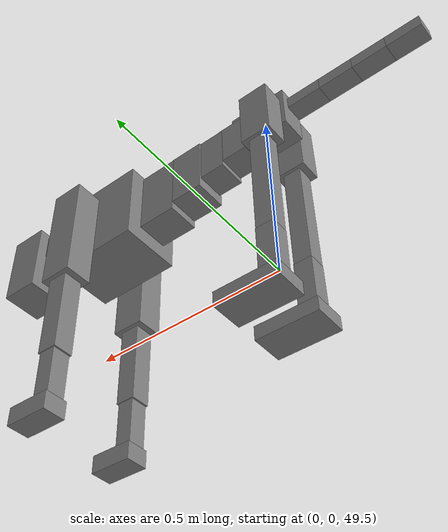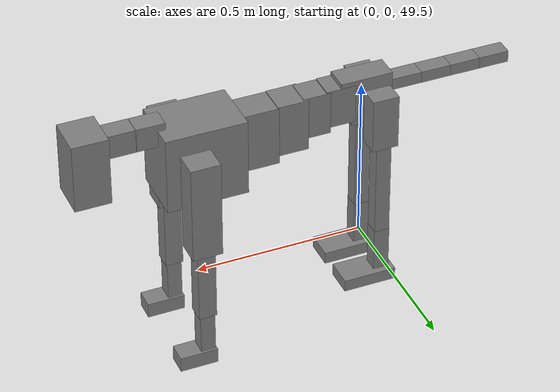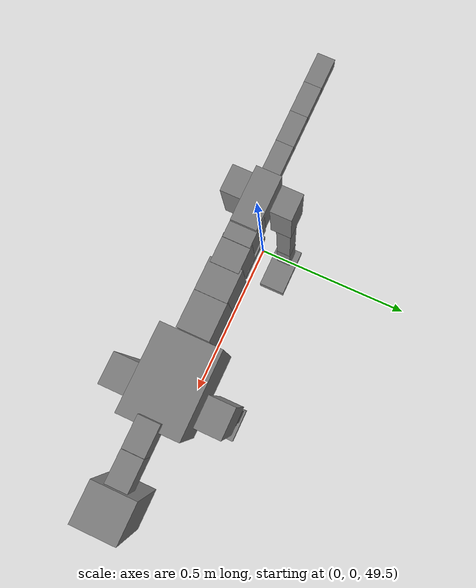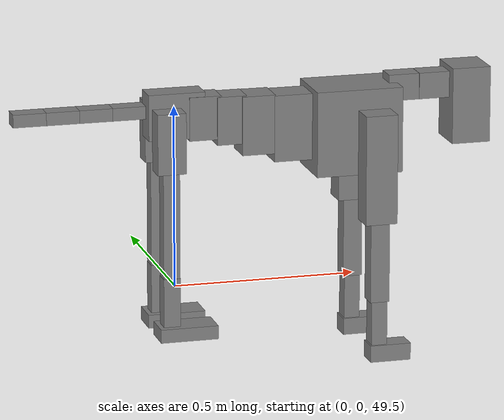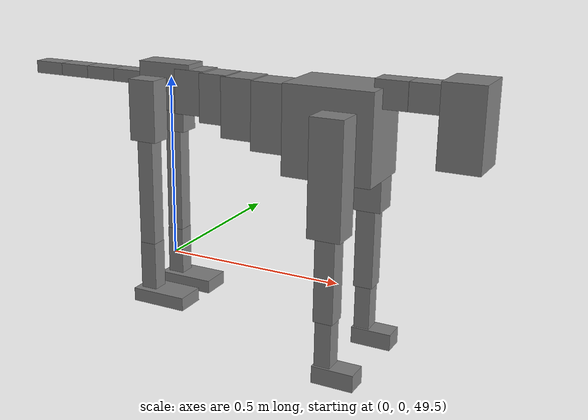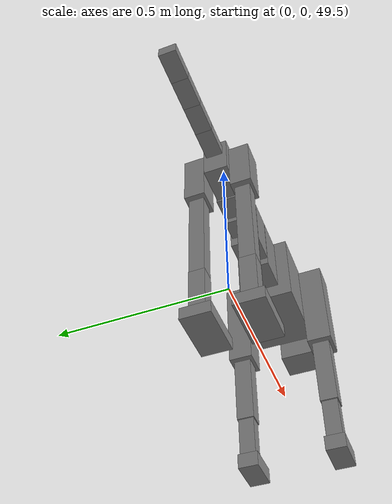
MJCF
<mujoco model="dog">

    <default>
        <joint armature="0.02" stiffness="1" damping="0.2" limited="true"/>
        <geom condim="3" friction="1 0.05 0.05" margin="0.01"/>
        <motor ctrllimited="true" ctrlrange="-1.0 1.0" forcelimited="true" gear="50"/>
    </default>

    <compiler inertiafromgeom="true" angle="radian"/>

    <option timestep="0.016" iterations="50" tolerance="1e-10" solver="Newton" jacobian="dense" cone="pyramidal"/>

    <size nconmax="20000" njmax="60000" nstack="5000000"/>
    <visual>
        <map force="0.1" zfar="30"/>
        <rgba haze="0.15 0.25 0.35 1"/>
        <quality shadowsize="2048"/>
        <global offwidth="800" offheight="800"/>
    </visual>

    <asset>
        <texture type="skybox" builtin="gradient" rgb1="0.3 0.5 0.7" rgb2="0 0 0" width="512" height="512"/>
        <texture name="texplane" type="2d" builtin="checker" rgb1=".2 .3 .4" rgb2=".1 0.15 0.2" width="512" height="512"
                 mark="cross" markrgb=".8 .8 .8"/>
        <texture name="texgeom" type="cube" builtin="flat" mark="cross" width="127" height="1278" rgb1="0.8 0.6 0.4"
                 rgb2="0.8 0.6 0.4" markrgb="1 1 1" random="0.01"/>

        <material name="matplane" reflectance="0.3" texture="texplane" texrepeat="1 1" texuniform="true"/>
        <material name="matgeom" texture="texgeom" texuniform="true" rgba="0.8 0.6 .4 1"/>
    </asset>

    <worldbody>
        <geom name="floor" pos="0 0 0" size="0 0 .25" type="plane" material="matplane" condim="3"/>

        <light directional="false" diffuse=".2 .2 .2" specular="0 0 0" pos="0 0 5" dir="0 0 -1" castshadow="false"/>
        <light mode="targetbodycom" target="torso" directional="false" diffuse=".8 .8 .8" specular="0.3 0.3 0.3"
               pos="0 0 4.0" dir="0 0 -1"/>

        <body name="root" pos="0 0 50">
            <freejoint name="root_1"/>
            <geom type="box" pos="0 0 -0.02" size="0.0774  0.0358  0.063" density="2030"/>

            <body name="spine1" pos="0.054 0 0">
                <joint name="spine1_y" axis="0 1 0" range="0 0.7" limited="true"/>
                <geom type="box" pos="0.02375 0 -0.03" size="0.04375  0.0375  0.05985" density="2030"/>

                <body name="spine2" pos="0.0612 0 0">
                    <joint name="spine2_y" axis="0 1 0" range="-0.15 0.15" limited="true"/>
                    <geom type="box" pos="0.03555  0  -0.04" size="0.04055  0.039  0.06615" density="2030"/>

                    <body name="spine3" pos="0.0730 0 0">
                        <joint name="spine3_y" axis="0 1 0" range="-0.15 0.15" limited="true"/>
                        <geom type="box" pos="0.03555  0  -0.057" size="0.04555  0.0445  0.081" density="2030"/>

                        <body name="spine4" pos="0.0780 0 0">
                            <joint name="spine4_y" axis="0 1 0" range="-0.15 0.15" limited="true"/>
                            <geom type="box" pos="0.05265  0  -0.07" size="0.05265  0.045  0.09135" density="2030"/>

                            <body name="torso" pos="0.1082 0 0">
                                <joint name="torso_y" axis="0 1 0" range="-0.15 0.15" limited="true"/>
                                <geom type="box" pos="0.11925  0  -0.085" size="0.11925  0.085  0.11745"
                                      density="2030"/>

                                <body name="neck1" pos="0.2160  0   0.0180">
                                    <joint name="neck1_y" axis="0 1 0" range="-1.2  -1" limited="true"/>
                                    <geom type="box" pos="0.0423  0  0" size="0.0423  0.03  0.036" density="2325"/>

                                    <body name="neck2" pos="0.0853  0  0">
                                        <joint name="neck2_y" axis="0 1 0" range="0.1  0" limited="true"/>
                                        <geom type="box" pos="0.0423  0  0" size="0.0423  0.03  0.036" density="2325"/>

                                        <body name="head" pos="0.0853  0  0">
                                            <joint name="head_y" axis="0 1 0" range="-0.3  -0.2" limited="true"/>
                                            <geom type="box" pos="0.0531  0  -0.055" size="0.0531  0.06  0.1044"
                                                  density="4030"/>

                                        </body>
                                    </body>
                                </body>

                                <body name="front_shoulder" pos="0.156  0   -0.0480">
                                    <joint name="front_shoulder_y" axis="0 1 0" range="-1 1.5" limited="true"/>
                                    <geom type="box" pos="0 0.13 -0.1238" size="0.0439  0.0375  0.1505" density="1158"/>
                                    <geom type="box" pos="0 -0.13 -0.1238" size="0.0439  0.0375  0.1505"
                                          density="1158"/>

                                    <body name="front_elbow" pos="0  0  -0.2477">
                                        <joint name="front_elbow_y" axis="0 1 0" range="-2 0" limited="true"/>
                                        <geom type="box" pos="0 0.13 -0.1232" size="0.0263  0.0269  0.1232"
                                              density="1081"/>
                                        <geom type="box" pos="0 -0.13 -0.1232" size="0.0263  0.0269  0.1232"
                                              density="1081"/>

                                        <body name="front_wrist" pos="0  0  -0.2464">
                                            <joint name="front_wrist_y" axis="0 1 0" range="-0.2 0" limited="true"/>
                                            <geom type="box" pos="0 0.13 -0.0680" size="0.0217  0.0242  0.0812"
                                                  density="1664"/>
                                            <geom type="box" pos="0 -0.13 -0.0680" size="0.0217  0.0242  0.0812"
                                                  density="1664"/>

                                            <body name="front_finger_end" pos="0  0  -0.1361">
                                                <joint name="front_finger_y" axis="0 1 0" range="-0.4 1"
                                                       limited="true"/>
                                                <geom type="box" pos="0.0306  0.13  -0.0082"
                                                      size="0.0562  0.0306  0.0232" density="1515"/>
                                                <geom type="box" pos="0.0306  -0.13  -0.0082"
                                                      size="0.0562  0.0306  0.0232" density="1515"/>

                                            </body>

                                        </body>
                                    </body>
                                </body>

                            </body>
                        </body>
                    </body>
                </body>
            </body>

            <body name="back_hip" pos="-0.03 0 -0.018">
                <joint name="back_hip_y" axis="0 1 0" range="-1.5 0.3" limited="true"/>
                <geom type="box" pos="0 0.07 -0.0603" size="0.0390  0.0306  0.0831" density="1154"/>
                <geom type="box" pos="0 -0.07 -0.0603" size="0.0390  0.0306  0.0831" density="1154"/>

                <body name="back_knee" pos="0  0  -0.1207">
                    <joint name="back_knee_y" axis="0 1 0" range="0 2.8" limited="true"/>
                    <geom type="box" pos="0 0.07 -0.1621" size="0.0226  0.0223  0.1776" density="1227"/>
                    <geom type="box" pos="0 -0.07 -0.1621" size="0.0226  0.0223  0.1776" density="1227"/>

                    <body name="back_ankle" pos="0  0  -0.3242">
                        <joint name="back_ankle_y" axis="0 1 0" range="-2.2 0" limited="true"/>
                        <geom type="box" pos="0 0.07 -0.0687" size="0.0231  0.0231  0.0800" density="1284"/>
                        <geom type="box" pos="0 -0.07 -0.0687" size="0.0231  0.0231  0.0800" density="1284"/>

                        <body name="back_toe_end" pos="0  0  -0.1375">
                            <joint name="back_toe_y" axis="0 1 0" range="-0.4 1" limited="true"/>
                            <geom type="box" pos="0.0431  0.07  -0.0035" size="0.0790  0.0431  0.0185" density="1515"/>
                            <geom type="box" pos="0.0431  -0.07  -0.0035" size="0.0790  0.0431  0.0185" density="1515"/>

                        </body>
                    </body>
                </body>
            </body>

            <body name="tail1" pos="-0.074 0 -0.006">
                <joint name="tail1_y" axis="0 1 0" range="-0.2 0.2" limited="true"/>
                <geom type="box" pos="-0.0536  0  0" size="0.045  0.025  0.0175" density="1587"/>

                <body name="tail2" pos="-0.09 0 0">
                    <joint name="tail2_y" axis="0 1 0" range="-0.2 0.2" limited="true"/>
                    <geom type="box" pos="-0.0536  0  0" size="0.045  0.025  0.0175" density="1587"/>

                    <body name="tail3" pos="-0.09 0 0">
                        <joint name="tail3_y" axis="0 1 0" range="-0.2 0.2" limited="true"/>
                        <geom type="box" pos="-0.0536  0  0" size="0.045  0.025  0.0175" density="1587"/>

                        <body name="tail4" pos="-0.09 0 0">
                            <joint name="tail4_y" axis="0 1 0" range="-0.2 0.2" limited="true"/>
                            <geom type="box" pos="-0.0536  0  0" size="0.045  0.025  0.0175" density="1587"/>

                        </body>
                    </body>
                </body>
            </body>
        </body>
    </worldbody>

    <actuator>
        <motor joint="spine1_y" forcerange="-150 150     "/>
        <motor joint="spine2_y" forcerange="-150 150     "/>
        <motor joint="spine3_y" forcerange="-150 150     "/>
        <motor joint="spine4_y" forcerange="-150 150     "/>
        <motor joint="torso_y" forcerange="-150 150     "/>
        <motor joint="neck1_y" forcerange="-100 100       "/>
        <motor joint="neck2_y" forcerange="-100 100       "/>
        <motor joint="head_y" forcerange="-150 150       "/>
        <motor joint="front_shoulder_y" forcerange="-171.76 178.36"/>
        <motor joint="front_elbow_y" forcerange="-185.29 110.04"/>
        <motor joint="front_wrist_y" forcerange="-50.62 142.70"/>
        <motor joint="front_finger_y" forcerange="-83.74 39.66"/>
        <motor joint="back_hip_y" forcerange="-336.56 271.02"/>
        <motor joint="back_knee_y" forcerange="-317.31 206.62"/>
        <motor joint="back_angle_y" forcerange="-199.91 70.10"/>
        <motor joint="back_toe_y" forcerange="-137.75 127.05"/>
        <motor joint="tail1_y" forcerange="-50 50     "/>
        <motor joint="tail2_y" forcerange="-50 50     "/>
        <motor joint="tail3_y" forcerange="-50 50     "/>
        <motor joint="tail4_y" forcerange="-50 50     "/>
    </actuator>
</mujoco>
